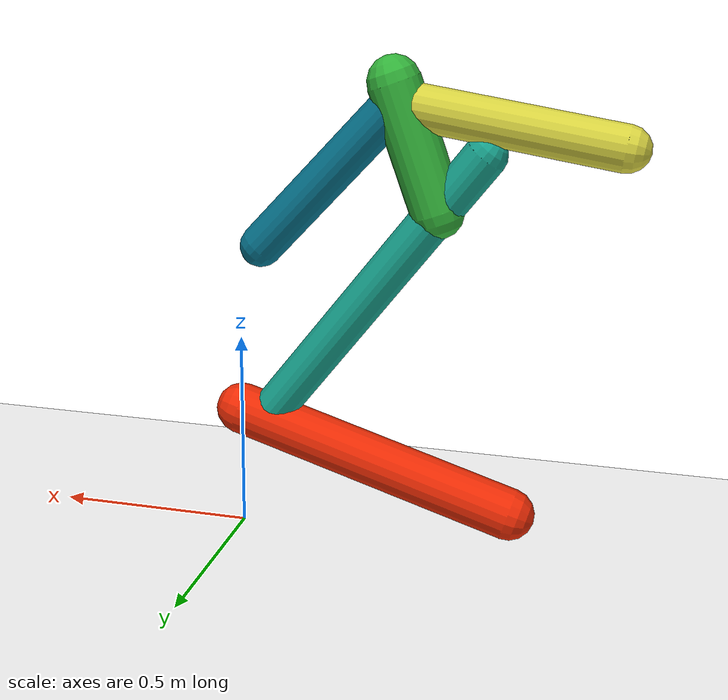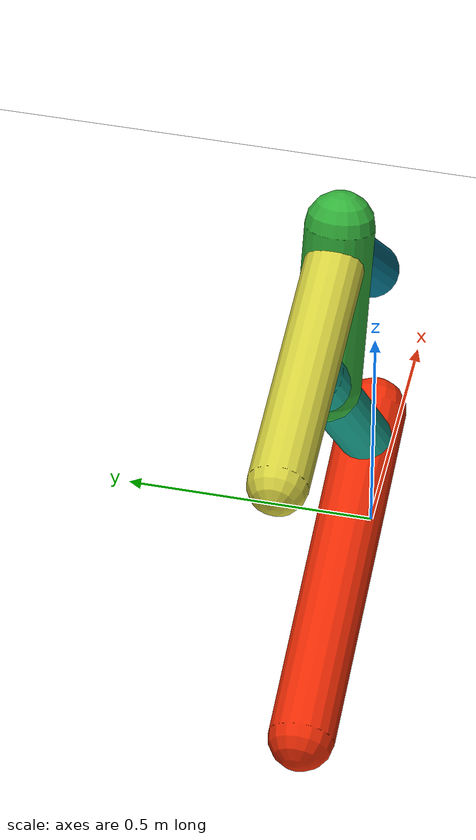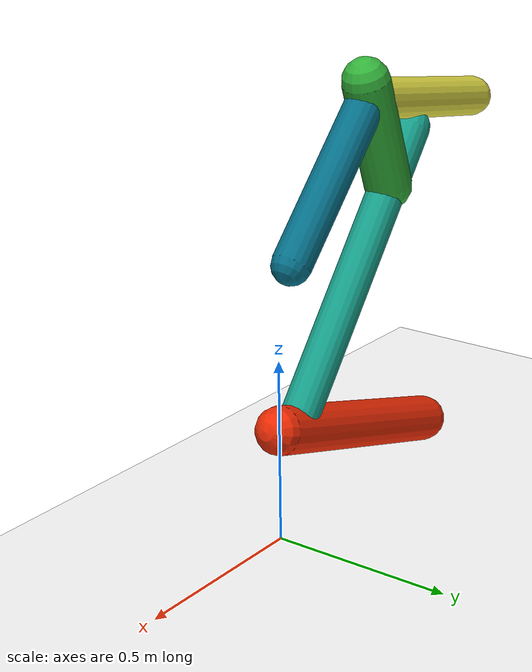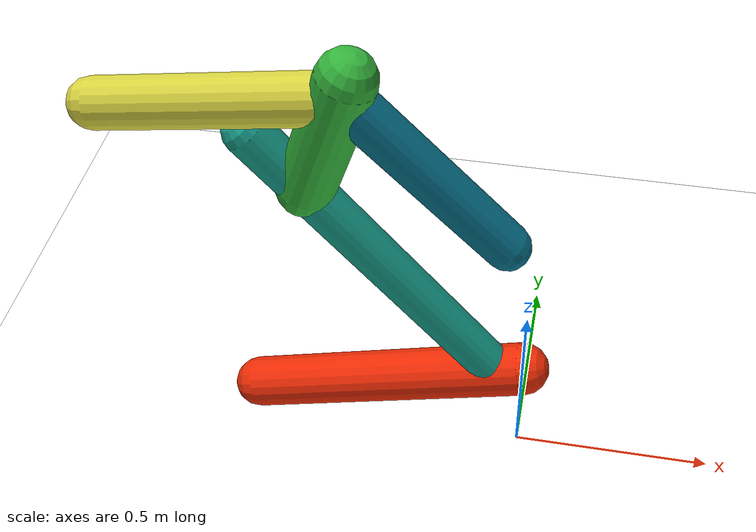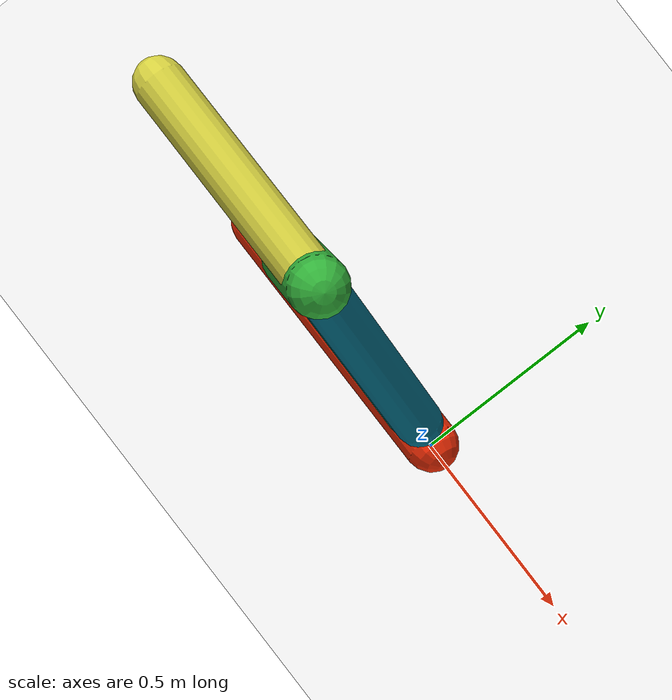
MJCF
<mujoco model="morphology">
  <option timestep="0.01"/>
  <default>
    <default class="/"/>
  </default>
  <asset>
    <texture name="texplane" type="2d" builtin="checker" rgb1="0.1 0.2 0.3" rgb2="0.2 0.3 0.4" width="300" height="300"/>
    <material name="MatPlane" class="/" texture="texplane" texrepeat="20 20" specular="1" shininess="1" reflectance="0.5"/>
  </asset>
  <worldbody>
    <light name="//unnamed_light_0" class="/" directional="true" pos="0 0 1.5" dir="0 0 -1.3" cutoff="1e+02" exponent="1" diffuse="1 1 1" specular="0.1 0.1 0.1"/>
    <geom name="ground" class="/" type="plane" size="15 15 0.5" material="MatPlane" rgba="1 1 1 1"/>
    <body name="body" pos="0 0 0.31">
      <geom name="geom0" class="/" type="capsule" contype="1" conaffinity="1" condim="3" size="0.065" rgba="0.93 0.17 0.019 1" friction="0.4 0.1 0.1" fromto="0 0 0 -0.69 0 -0.21"/>
      <body name="body1" pos="-0.063 0 -0.019">
        <geom name="geom1" class="/" type="capsule" contype="1" conaffinity="1" condim="3" size="0.052" rgba="0.087 0.63 0.55 1" friction="0.4 0.1 0.1" fromto="0 0 0 -0.54 0 0.7"/>
        <body name="body2" pos="-0.43 0 0.56">
          <geom name="geom2" class="/" type="capsule" contype="1" conaffinity="1" condim="3" size="0.065" rgba="0.2 0.7 0.23 1" friction="0.4 0.1 0.1" fromto="0 0 0 0.11 0 0.3"/>
          <body name="body3" pos="0.097 0 0.26">
            <geom name="geom3" class="/" type="capsule" contype="1" conaffinity="1" condim="3" size="0.053" rgba="0.019 0.44 0.54 1" friction="0.4 0.1 0.1" fromto="0 0 0 0.34 0 -0.37"/>
            <body name="body4" pos="0.0062 0 -0.0069">
              <geom name="geom4" class="/" type="capsule" contype="1" conaffinity="1" condim="3" size="0.056" rgba="0.84 0.82 0.25 1" friction="0.4 0.1 0.1" fromto="0 0 0 -0.53 0 -0.083"/>
            </body>
            <joint name="joint3" class="/" type="hinge" axis="0 1 0" limited="true" stiffness="20" range="-55 55" armature="0.1" damping="2"/>
          </body>
          <joint name="joint2" class="/" type="hinge" axis="0 1 0" limited="true" stiffness="20" range="-42 42" armature="0.1" damping="2"/>
        </body>
        <joint name="joint1" class="/" type="hinge" axis="0 1 0" limited="true" stiffness="20" range="-38 38" armature="0.1" damping="2"/>
      </body>
      <joint name="rootx" class="/" type="slide" axis="1 0 0" limited="false" stiffness="0" armature="0" damping="0"/>
      <joint name="rootz" class="/" type="slide" axis="0 0 1" limited="false" stiffness="0" armature="0" damping="0"/>
      <joint name="rooty" class="/" type="hinge" axis="0 1 0" limited="false" stiffness="0" armature="0" damping="0"/>
    </body>
  </worldbody>
  <actuator>
    <motor name="motor3" class="/" ctrllimited="true" ctrlrange="-1 1" gear="1.1e+02" joint="joint3"/>
    <motor name="motor2" class="/" ctrllimited="true" ctrlrange="-1 1" gear="1.2e+02" joint="joint2"/>
    <motor name="motor1" class="/" ctrllimited="true" ctrlrange="-1 1" gear="1.2e+02" joint="joint1"/>
  </actuator>
  <sensor>
    <subtreelinvel name="velocity" body="body"/>
  </sensor>
</mujoco>
